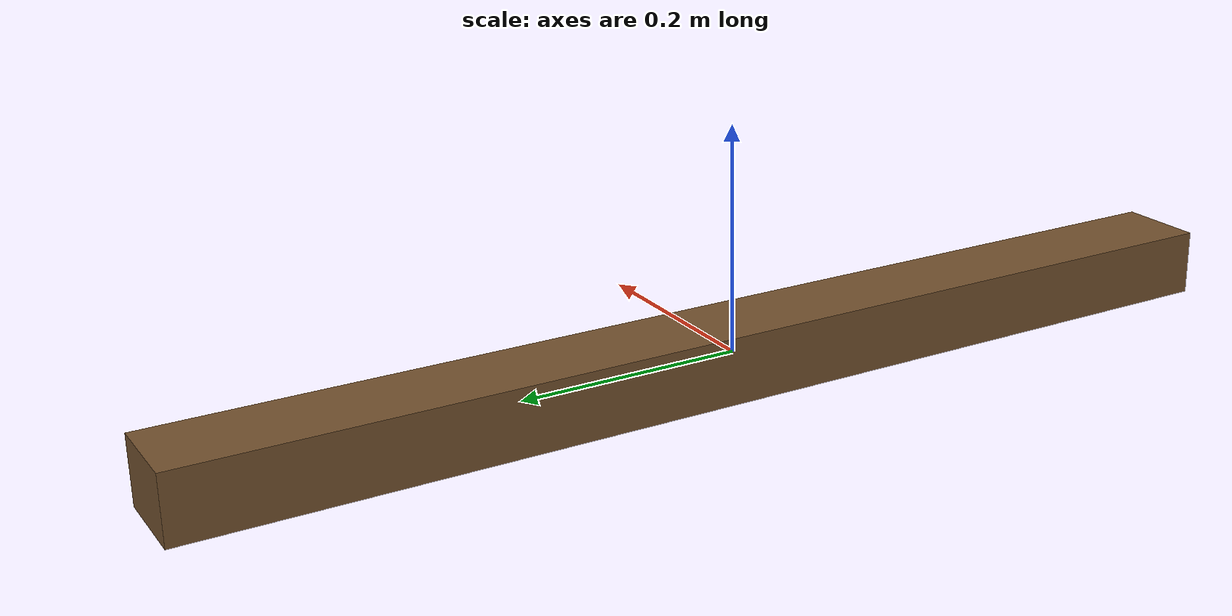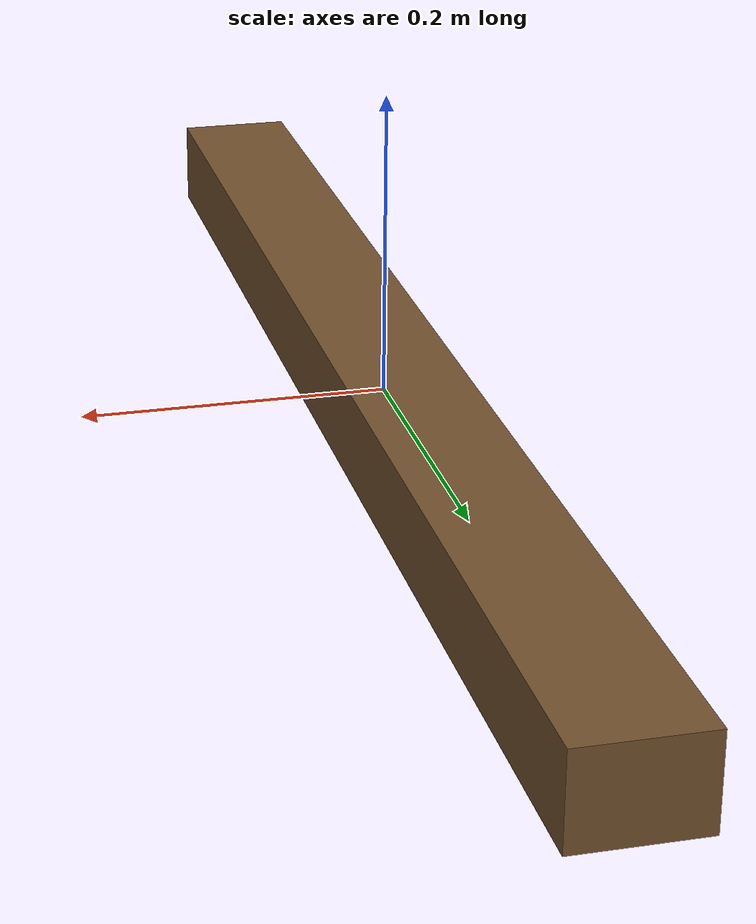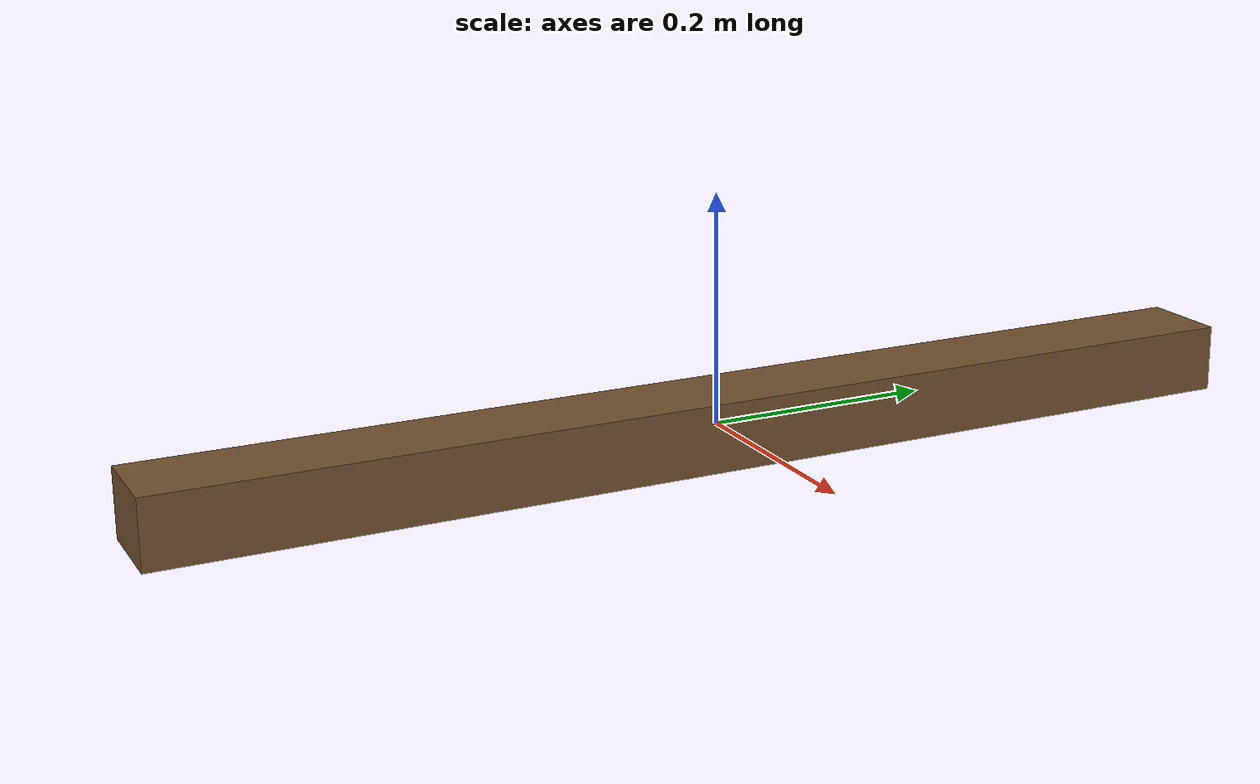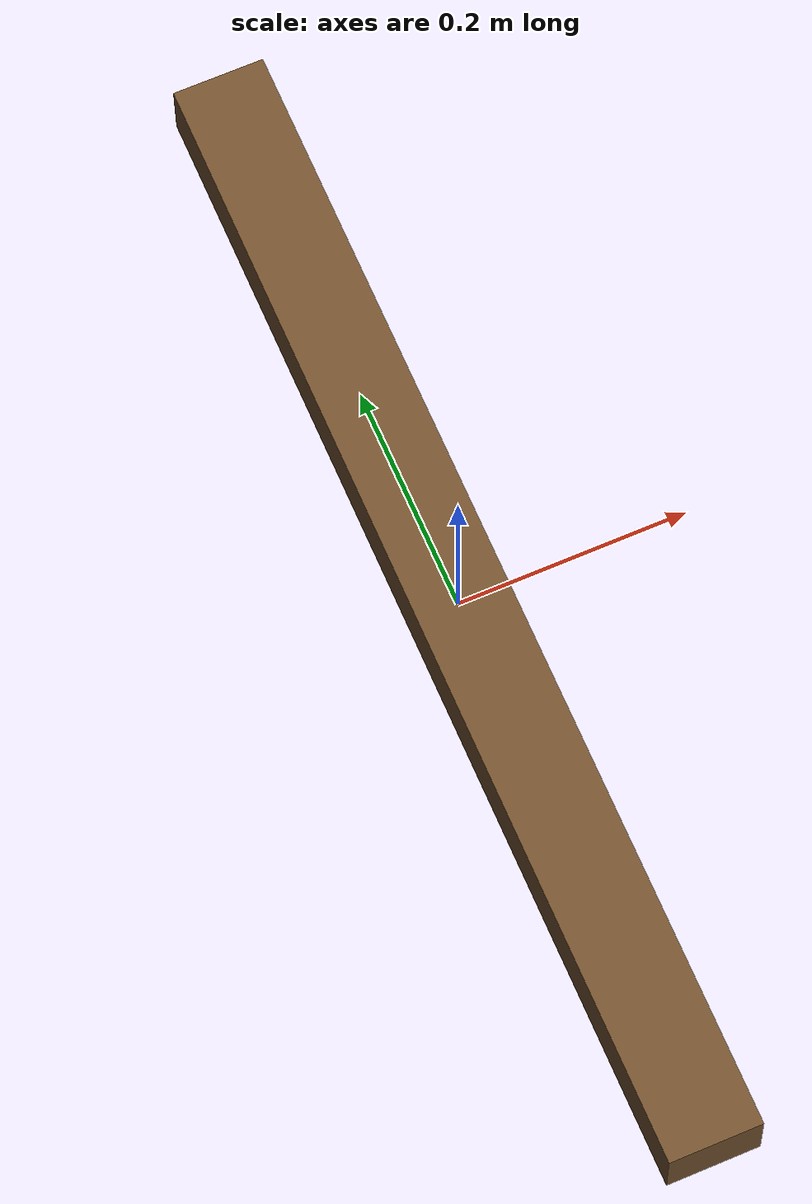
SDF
<?xml version="1.0"?>
<sdf version="1.9">
  <model name="m8_stringer">
    <static>true</static>
    <link name="body">
      <collision name="c">
        <geometry><box><size>0.08 1.00 0.06</size></box></geometry>
      </collision>
      <visual name="v">
        <geometry><box><size>0.08 1.00 0.06</size></box></geometry>
        <material><ambient>0.45 0.32 0.18 1</ambient><diffuse>0.45 0.32 0.18 1</diffuse></material>
      </visual>
    </link>
  </model>
</sdf>
